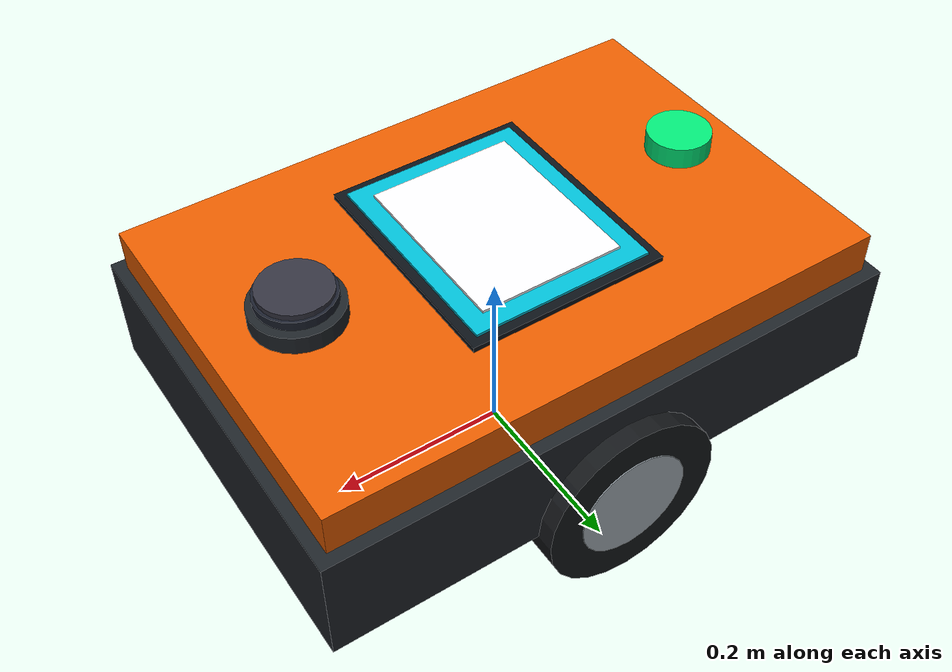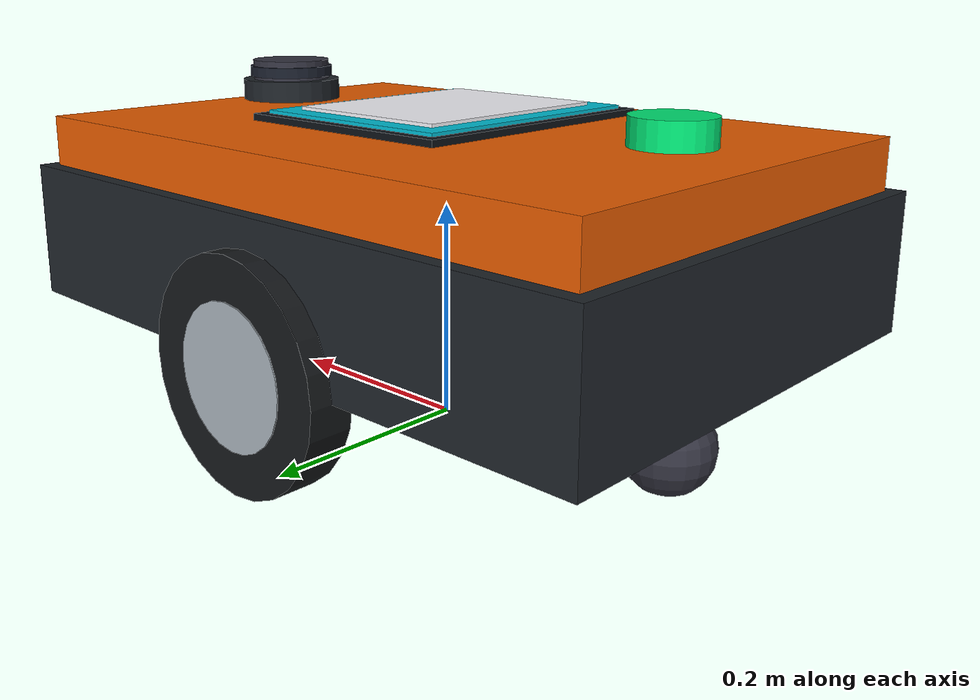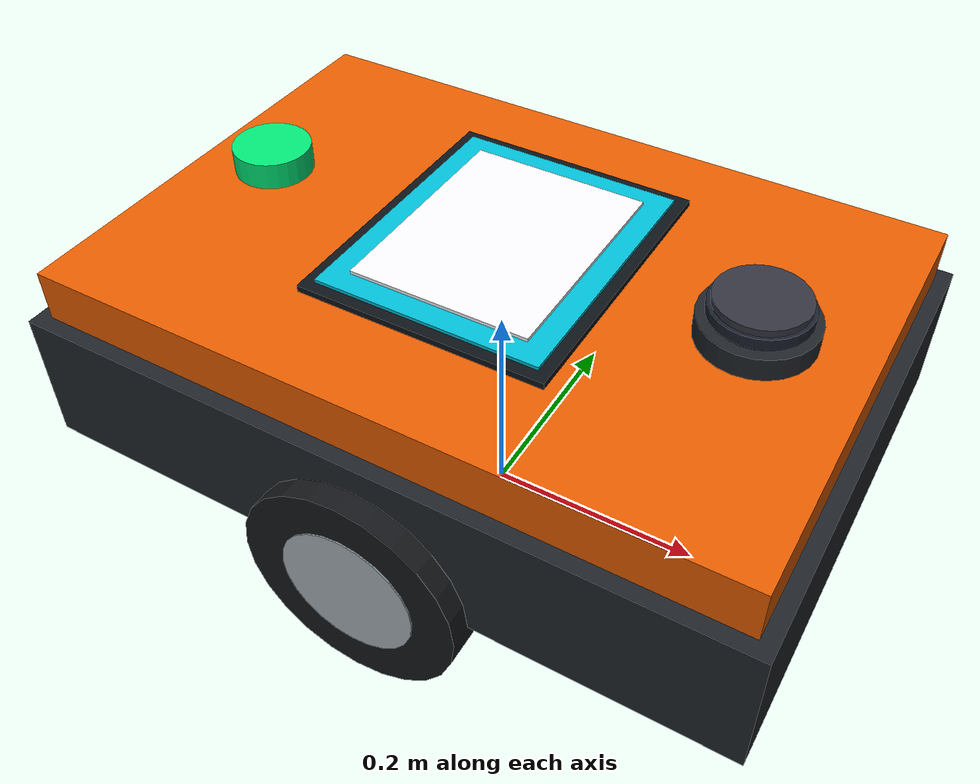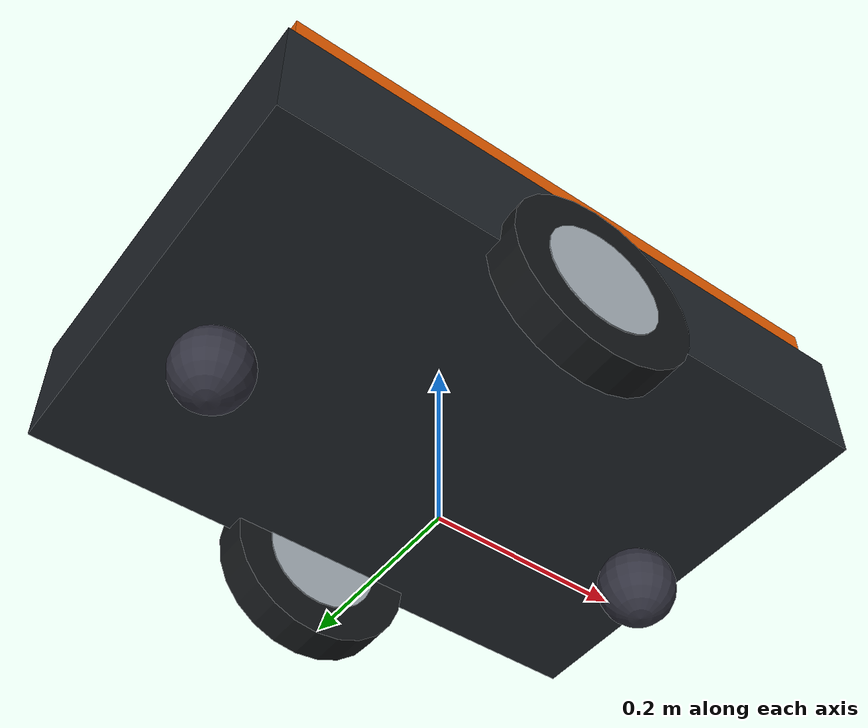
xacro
<?xml version="1.0"?>
<robot name="amr" xmlns:xacro="http://www.ros.org/wiki/xacro">

  <!-- Arguments -->
  <xacro:arg name="robot_name" default="amr_0"/>
  <xacro:arg name="prefix" default="amr_0/"/>
  <xacro:arg name="wheel_separation" default="0.45"/>
  <xacro:arg name="wheel_radius" default="0.10"/>
  <xacro:arg name="chassis_length" default="0.65"/>
  <xacro:arg name="chassis_width" default="0.45"/>
  <xacro:arg name="chassis_height" default="0.18"/>
  <xacro:arg name="chassis_mass" default="15.0"/>

  <!-- Include sub-components -->
  <xacro:include filename="amr_materials.xacro"/>
  <xacro:include filename="amr_core.xacro"/>
  <xacro:include filename="amr_lidar.xacro"/>
  <xacro:include filename="amr_gazebo.xacro"/>

  <!-- Instantiate components -->
  <xacro:amr_core
    robot_name="$(arg robot_name)"
    prefix="$(arg prefix)"
    chassis_length="$(arg chassis_length)"
    chassis_width="$(arg chassis_width)"
    chassis_height="$(arg chassis_height)"
    chassis_mass="$(arg chassis_mass)"
    wheel_separation="$(arg wheel_separation)"
    wheel_radius="$(arg wheel_radius)"/>

  <xacro:amr_lidar
    prefix="$(arg prefix)"/>

  <xacro:amr_gazebo
    robot_name="$(arg robot_name)"
    prefix="$(arg prefix)"
    wheel_separation="$(arg wheel_separation)"
    wheel_radius="$(arg wheel_radius)"/>

</robot>

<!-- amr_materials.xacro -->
<robot xmlns:xacro="http://www.ros.org/wiki/xacro">

  <!-- Classic Palette (Preserved for compatibility) -->
  <material name="amr_orange">
    <color rgba="0.95 0.45 0.1 1.0"/>
  </material>

  <material name="amr_dark_grey">
    <color rgba="0.2 0.2 0.25 1.0"/>
  </material>

  <material name="amr_light_grey">
    <color rgba="0.7 0.7 0.75 1.0"/>
  </material>

  <material name="amr_black">
    <color rgba="0.05 0.05 0.05 1.0"/>
  </material>

  <material name="amr_blue">
    <color rgba="0.1 0.5 0.9 1.0"/>
  </material>

  <!-- M2.5 Polished Industrial Palette -->
  <material name="amr_chassis_dark">
    <color rgba="0.12 0.14 0.16 1.0"/>
  </material>

  <material name="amr_safety_orange">
    <color rgba="0.90 0.36 0.00 1.0"/>
  </material>

  <material name="amr_rim_silver">
    <color rgba="0.65 0.69 0.72 1.0"/>
  </material>

  <material name="amr_rubber_black">
    <color rgba="0.08 0.09 0.10 1.0"/>
  </material>

  <material name="amr_sensor_lens">
    <color rgba="0.10 0.12 0.17 1.0"/>
  </material>

  <material name="amr_status_green">
    <color rgba="0.00 0.90 0.46 1.0"/>
  </material>

  <material name="amr_status_amber">
    <color rgba="1.00 0.60 0.00 1.0"/>
  </material>

  <material name="amr_badge_panel">
    <color rgba="0.05 0.07 0.09 1.0"/>
  </material>

  <material name="amr_accent_cyan">
    <color rgba="0.00 0.74 0.83 1.0"/>
  </material>

  <material name="amr_white_text">
    <color rgba="0.96 0.96 0.98 1.0"/>
  </material>

</robot>

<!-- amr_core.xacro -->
<robot xmlns:xacro="http://www.ros.org/wiki/xacro">

  <xacro:macro name="amr_core" params="
    prefix
    robot_name:=amr_0
    chassis_length:=0.65
    chassis_width:=0.45
    chassis_height:=0.18
    chassis_mass:=15.0
    wheel_separation:=0.45
    wheel_radius:=0.10
    wheel_width:=0.04
    wheel_mass:=1.5
    caster_radius:=0.04
    caster_mass:=0.5
  ">

    <!-- Root ground projection frame -->
    <link name="${prefix}base_footprint"/>

    <!-- Base link (chassis body) -->
    <joint name="${prefix}base_footprint_joint" type="fixed">
      <parent link="${prefix}base_footprint"/>
      <child link="${prefix}base_link"/>
      <origin xyz="0 0 ${wheel_radius}" rpy="0 0 0"/>
    </joint>

    <link name="${prefix}base_link">
      <!-- 1. Lower Industrial Chassis Base -->
      <visual name="chassis_lower">
        <origin xyz="0 0 ${chassis_height * 0.35}" rpy="0 0 0"/>
        <geometry>
          <box size="${chassis_length} ${chassis_width} ${chassis_height * 0.70}"/>
        </geometry>
        <material name="amr_chassis_dark"/>
      </visual>

      <!-- 2. Upper Protective Shell & Deck (Safety Orange) -->
      <visual name="chassis_upper_shell">
        <origin xyz="0 0 ${chassis_height * 0.82}" rpy="0 0 0"/>
        <geometry>
          <box size="${chassis_length * 0.96} ${chassis_width * 0.94} ${chassis_height * 0.28}"/>
        </geometry>
        <material name="amr_safety_orange"/>
      </visual>

      <!-- 3. Identification Badge Base (Dark Contrast Plate) -->
      <visual name="id_badge_base">
        <origin xyz="0 0 ${chassis_height + 0.003}" rpy="0 0 0"/>
        <geometry>
          <box size="0.22 0.26 0.006"/>
        </geometry>
        <material name="amr_badge_panel"/>
      </visual>

      <!-- 4. Identification Accent Trim -->
      <visual name="id_badge_trim">
        <origin xyz="0 0 ${chassis_height + 0.007}" rpy="0 0 0"/>
        <geometry>
          <box size="0.20 0.24 0.004"/>
        </geometry>
        <material name="amr_accent_cyan"/>
      </visual>

      <!-- 5. Identification Nameplate Face -->
      <visual name="id_badge_face">
        <origin xyz="0 0 ${chassis_height + 0.010}" rpy="0 0 0"/>
        <geometry>
          <box size="0.16 0.20 0.004"/>
        </geometry>
        <material name="amr_white_text"/>
      </visual>

      <!-- 6. Active Autonomous Status Indicator Ring (Rear Center Deck) -->
      <visual name="status_beacon">
        <origin xyz="${-chassis_length / 2.0 + 0.09} 0.0 ${chassis_height + 0.012}" rpy="0 0 0"/>
        <geometry>
          <cylinder radius="0.035" length="0.024"/>
        </geometry>
        <material name="amr_status_green"/>
      </visual>

      <!-- Exact collision box preserved from M1/M2 -->
      <collision>
        <origin xyz="0 0 ${chassis_height / 2.0}" rpy="0 0 0"/>
        <geometry>
          <box size="${chassis_length} ${chassis_width} ${chassis_height}"/>
        </geometry>
      </collision>

      <!-- Exact inertial parameters preserved from M1/M2 -->
      <inertial>
        <origin xyz="0 0 ${chassis_height / 2.0}" rpy="0 0 0"/>
        <mass value="${chassis_mass}"/>
        <inertia
          ixx="${(1.0 / 12.0) * chassis_mass * (chassis_width * chassis_width + chassis_height * chassis_height)}"
          ixy="0.0" ixz="0.0"
          iyy="${(1.0 / 12.0) * chassis_mass * (chassis_length * chassis_length + chassis_height * chassis_height)}"
          iyz="0.0"
          izz="${(1.0 / 12.0) * chassis_mass * (chassis_length * chassis_length + chassis_width * chassis_width)}"/>
      </inertial>
    </link>

    <!-- Left Wheel -->
    <joint name="${prefix}left_wheel_joint" type="continuous">
      <parent link="${prefix}base_link"/>
      <child link="${prefix}left_wheel"/>
      <origin xyz="0.0 ${wheel_separation / 2.0} 0.0" rpy="0 0 0"/>
      <axis xyz="0 1 0"/>
      <dynamics damping="0.1" friction="0.1"/>
    </joint>

    <link name="${prefix}left_wheel">
      <!-- Rubber Tire Tread -->
      <visual name="tire">
        <origin xyz="0 0 0" rpy="1.57079632679 0 0"/>
        <geometry>
          <cylinder radius="${wheel_radius}" length="${wheel_width}"/>
        </geometry>
        <material name="amr_rubber_black"/>
      </visual>

      <!-- Silver Alloy Rim Hub -->
      <visual name="rim">
        <origin xyz="0 0 0" rpy="1.57079632679 0 0"/>
        <geometry>
          <cylinder radius="${wheel_radius * 0.62}" length="${wheel_width + 0.002}"/>
        </geometry>
        <material name="amr_rim_silver"/>
      </visual>

      <!-- Exact collision preserved -->
      <collision>
        <origin xyz="0 0 0" rpy="1.57079632679 0 0"/>
        <geometry>
          <cylinder radius="${wheel_radius}" length="${wheel_width}"/>
        </geometry>
      </collision>

      <!-- Exact inertial preserved -->
      <inertial>
        <mass value="${wheel_mass}"/>
        <inertia
          ixx="${(1.0 / 12.0) * wheel_mass * (3 * wheel_radius * wheel_radius + wheel_width * wheel_width)}"
          ixy="0.0" ixz="0.0"
          iyy="${0.5 * wheel_mass * wheel_radius * wheel_radius}"
          iyz="0.0"
          izz="${(1.0 / 12.0) * wheel_mass * (3 * wheel_radius * wheel_radius + wheel_width * wheel_width)}"/>
      </inertial>
    </link>

    <!-- Right Wheel -->
    <joint name="${prefix}right_wheel_joint" type="continuous">
      <parent link="${prefix}base_link"/>
      <child link="${prefix}right_wheel"/>
      <origin xyz="0.0 ${-wheel_separation / 2.0} 0.0" rpy="0 0 0"/>
      <axis xyz="0 1 0"/>
      <dynamics damping="0.1" friction="0.1"/>
    </joint>

    <link name="${prefix}right_wheel">
      <!-- Rubber Tire Tread -->
      <visual name="tire">
        <origin xyz="0 0 0" rpy="1.57079632679 0 0"/>
        <geometry>
          <cylinder radius="${wheel_radius}" length="${wheel_width}"/>
        </geometry>
        <material name="amr_rubber_black"/>
      </visual>

      <!-- Silver Alloy Rim Hub -->
      <visual name="rim">
        <origin xyz="0 0 0" rpy="1.57079632679 0 0"/>
        <geometry>
          <cylinder radius="${wheel_radius * 0.62}" length="${wheel_width + 0.002}"/>
        </geometry>
        <material name="amr_rim_silver"/>
      </visual>

      <!-- Exact collision preserved -->
      <collision>
        <origin xyz="0 0 0" rpy="1.57079632679 0 0"/>
        <geometry>
          <cylinder radius="${wheel_radius}" length="${wheel_width}"/>
        </geometry>
      </collision>

      <!-- Exact inertial preserved -->
      <inertial>
        <mass value="${wheel_mass}"/>
        <inertia
          ixx="${(1.0 / 12.0) * wheel_mass * (3 * wheel_radius * wheel_radius + wheel_width * wheel_width)}"
          ixy="0.0" ixz="0.0"
          iyy="${0.5 * wheel_mass * wheel_radius * wheel_radius}"
          iyz="0.0"
          izz="${(1.0 / 12.0) * wheel_mass * (3 * wheel_radius * wheel_radius + wheel_width * wheel_width)}"/>
      </inertial>
    </link>

    <!-- Front Caster -->
    <joint name="${prefix}front_caster_joint" type="fixed">
      <parent link="${prefix}base_link"/>
      <child link="${prefix}front_caster"/>
      <origin xyz="${chassis_length / 2.0 - 0.08} 0.0 ${-wheel_radius + caster_radius}" rpy="0 0 0"/>
    </joint>

    <link name="${prefix}front_caster">
      <visual>
        <geometry>
          <sphere radius="${caster_radius}"/>
        </geometry>
        <material name="amr_dark_grey"/>
      </visual>

      <collision>
        <geometry>
          <sphere radius="${caster_radius}"/>
        </geometry>
      </collision>

      <inertial>
        <mass value="${caster_mass}"/>
        <inertia
          ixx="${0.4 * caster_mass * caster_radius * caster_radius}"
          ixy="0.0" ixz="0.0"
          iyy="${0.4 * caster_mass * caster_radius * caster_radius}"
          iyz="0.0"
          izz="${0.4 * caster_mass * caster_radius * caster_radius}"/>
      </inertial>
    </link>

    <!-- Rear Caster -->
    <joint name="${prefix}rear_caster_joint" type="fixed">
      <parent link="${prefix}base_link"/>
      <child link="${prefix}rear_caster"/>
      <origin xyz="${-chassis_length / 2.0 + 0.08} 0.0 ${-wheel_radius + caster_radius}" rpy="0 0 0"/>
    </joint>

    <link name="${prefix}rear_caster">
      <visual>
        <geometry>
          <sphere radius="${caster_radius}"/>
        </geometry>
        <material name="amr_dark_grey"/>
      </visual>

      <collision>
        <geometry>
          <sphere radius="${caster_radius}"/>
        </geometry>
      </collision>

      <inertial>
        <mass value="${caster_mass}"/>
        <inertia
          ixx="${0.4 * caster_mass * caster_radius * caster_radius}"
          ixy="0.0" ixz="0.0"
          iyy="${0.4 * caster_mass * caster_radius * caster_radius}"
          iyz="0.0"
          izz="${0.4 * caster_mass * caster_radius * caster_radius}"/>
      </inertial>
    </link>

  </xacro:macro>

</robot>

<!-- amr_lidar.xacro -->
<robot xmlns:xacro="http://www.ros.org/wiki/xacro">

  <xacro:macro name="amr_lidar" params="
    prefix
    laser_x:=0.22
    laser_y:=0.0
    laser_z:=0.18
  ">

    <joint name="${prefix}laser_joint" type="fixed">
      <parent link="${prefix}base_link"/>
      <child link="${prefix}laser_frame"/>
      <origin xyz="${laser_x} ${laser_y} ${laser_z}" rpy="0 0 0"/>
    </joint>

    <link name="${prefix}laser_frame">
      <!-- 1. Lower Turret Mount Base -->
      <visual name="lidar_mount">
        <origin xyz="0 0 0.010" rpy="0 0 0"/>
        <geometry>
          <cylinder radius="0.048" length="0.020"/>
        </geometry>
        <material name="amr_chassis_dark"/>
      </visual>

      <!-- 2. Rotating Sensor Turret Body -->
      <visual name="lidar_turret">
        <origin xyz="0 0 0.028" rpy="0 0 0"/>
        <geometry>
          <cylinder radius="0.038" length="0.022"/>
        </geometry>
        <material name="amr_dark_grey"/>
      </visual>

      <!-- 3. Optical Sensor Window Aperture -->
      <visual name="lidar_optical_window">
        <origin xyz="0 0 0.028" rpy="0 0 0"/>
        <geometry>
          <cylinder radius="0.041" length="0.010"/>
        </geometry>
        <material name="amr_sensor_lens"/>
      </visual>

      <!-- Exact collision geometry preserved from M1/M2 -->
      <collision>
        <origin xyz="0 0 0.02" rpy="0 0 0"/>
        <geometry>
          <cylinder radius="0.04" length="0.04"/>
        </geometry>
      </collision>

      <!-- Exact inertial parameters preserved from M1/M2 -->
      <inertial>
        <origin xyz="0 0 0.02" rpy="0 0 0"/>
        <mass value="0.2"/>
        <inertia
          ixx="0.0001" ixy="0.0" ixz="0.0"
          iyy="0.0001" iyz="0.0"
          izz="0.0001"/>
      </inertial>
    </link>

  </xacro:macro>

</robot>
